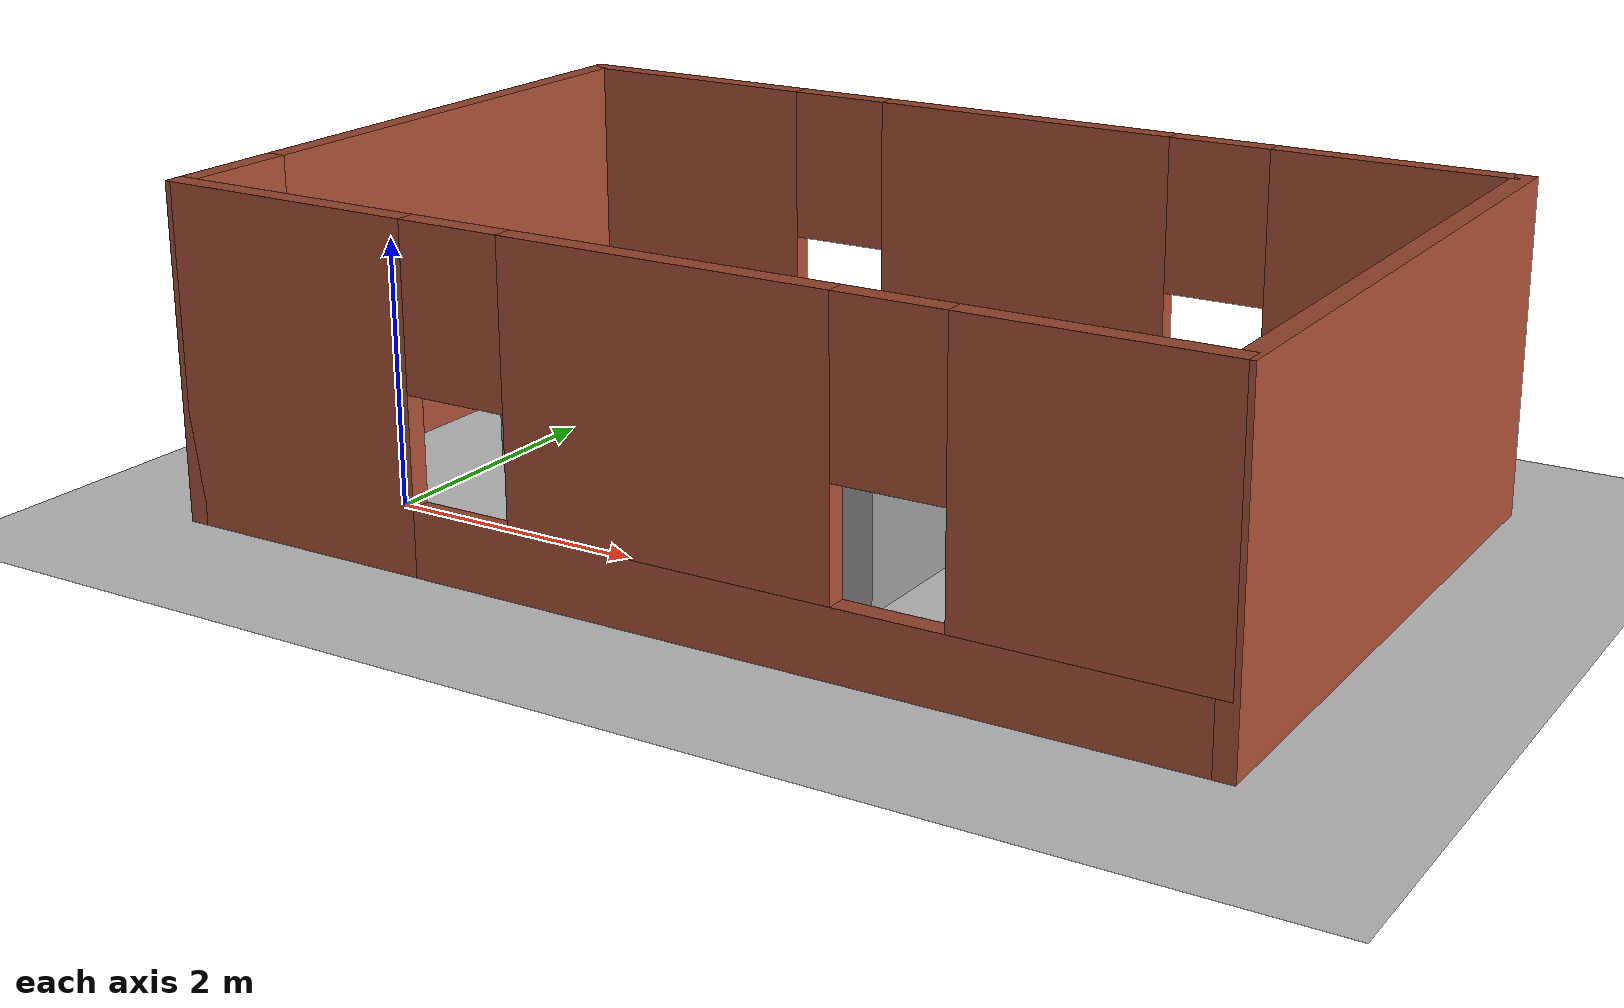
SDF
<sdf version="1.7">
 <world name="default">
  <light name="sun" type="directional">
   <pose>0 0 10 0 -0 0</pose>
   <diffuse>0.8 0.8 0.8 1</diffuse>
   <specular>0.2 0.2 0.2 1</specular>
   <attenuation>
    <range>1000</range>
    <constant>0.9</constant>
    <linear>0.01</linear>
    <quadratic>0.001</quadratic>
   </attenuation>
   <direction>-0.5 0.1 -0.9</direction>
   <spot><inner_angle>0</inner_angle><outer_angle>0</outer_angle><falloff>0</falloff></spot>
  </light>
  <model name="ground_plane">
   <static>1</static>
   <link name="link">
    <collision name="collision">
     <geometry><plane><normal>0 0 1</normal><size>100 100</size></plane></geometry>
     <surface>
      <contact><collide_bitmask>65535</collide_bitmask></contact>
      <friction><ode><mu>100</mu><mu2>50</mu2></ode></friction>
     </surface>
    </collision>
    <visual name="visual">
     <cast_shadows>0</cast_shadows>
     <geometry><plane><normal>0 0 1</normal><size>100 100</size></plane></geometry>
     <material>
      <script><uri>file://media/materials/scripts/gazebo.material</uri><name>Gazebo/Grey</name></script>
     </material>
    </visual>
   </link>
  </model>
  <gravity>0 0 -9.8</gravity>
  <magnetic_field>6e-06 2.3e-05 -4.2e-05</magnetic_field>
  <atmosphere type="adiabatic"/>
  <physics type="ode">
   <max_step_size>0.001</max_step_size>
   <real_time_factor>1</real_time_factor>
   <real_time_update_rate>1000</real_time_update_rate>
  </physics>
  <scene><ambient>0.4 0.4 0.4 1</ambient><background>0.7 0.7 0.7 1</background><shadows>1</shadows></scene>
  <spherical_coordinates>
   <surface_model>EARTH_WGS84</surface_model>
   <latitude_deg>0</latitude_deg>
   <longitude_deg>0</longitude_deg>
   <elevation>0</elevation>
   <heading_deg>0</heading_deg>
  </spherical_coordinates>
  <model name="big_room">
   <pose>2.93547 1.455 0 0 -0 0</pose>
   <link name="Wall_0">
    <pose>-0.020475 -2.425 0 0 -0 0</pose>
    <visual name="Wall_0_Visual_0">
     <pose>-2.95884 0 1.25 0 -0 0</pose>
     <geometry><box><size>2.08232 0.15 2.5</size></box></geometry>
     <material>
      <script><uri>file://media/materials/scripts/gazebo.material</uri><name>Gazebo/Bricks</name></script>
      <ambient>1 1 1 1</ambient>
     </material>
     <meta><layer>0</layer></meta>
    </visual>
    <collision name="Wall_0_Collision_0">
     <geometry><box><size>2.08232 0.15 2.5</size></box></geometry>
     <pose>-2.95884 0 1.25 0 -0 0</pose>
    </collision>
    <visual name="Wall_0_Visual_1">
     <pose>1.04116 0 0.25 0 -0 0</pose>
     <geometry><box><size>5.91768 0.15 0.5</size></box></geometry>
     <material>
      <script><uri>file://media/materials/scripts/gazebo.material</uri><name>Gazebo/Bricks</name></script>
      <ambient>1 1 1 1</ambient>
     </material>
     <meta><layer>0</layer></meta>
    </visual>
    <collision name="Wall_0_Collision_1">
     <geometry><box><size>5.91768 0.15 0.5</size></box></geometry>
     <pose>1.04116 0 0.25 0 -0 0</pose>
    </collision>
    <visual name="Wall_0_Visual_2">
     <pose>0.122225 0 1.5 0 -0 0</pose>
     <geometry><box><size>2.4798 0.15 2</size></box></geometry>
     <material>
      <script><uri>file://media/materials/scripts/gazebo.material</uri><name>Gazebo/Bricks</name></script>
      <ambient>1 1 1 1</ambient>
     </material>
     <meta><layer>0</layer></meta>
    </visual>
    <collision name="Wall_0_Collision_2">
     <geometry><box><size>2.4798 0.15 2</size></box></geometry>
     <pose>0.122225 0 1.5 0 -0 0</pose>
    </collision>
    <visual name="Wall_0_Visual_3">
     <pose>3.08106 0 1.5 0 -0 0</pose>
     <geometry><box><size>1.83787 0.15 2</size></box></geometry>
     <material>
      <script><uri>file://media/materials/scripts/gazebo.material</uri><name>Gazebo/Bricks</name></script>
      <ambient>1 1 1 1</ambient>
     </material>
     <meta><layer>0</layer></meta>
    </visual>
    <collision name="Wall_0_Collision_3">
     <geometry><box><size>1.83787 0.15 2</size></box></geometry>
     <pose>3.08106 0 1.5 0 -0 0</pose>
    </collision>
    <visual name="Wall_0_Visual_4">
     <pose>-1.51768 0 1.9 0 -0 0</pose>
     <geometry><box><size>0.8 0.15 1.2</size></box></geometry>
     <material>
      <script><uri>file://media/materials/scripts/gazebo.material</uri><name>Gazebo/Bricks</name></script>
      <ambient>1 1 1 1</ambient>
     </material>
     <meta><layer>0</layer></meta>
    </visual>
    <collision name="Wall_0_Collision_4">
     <geometry><box><size>0.8 0.15 1.2</size></box></geometry>
     <pose>-1.51768 0 1.9 0 -0 0</pose>
    </collision>
    <visual name="Wall_0_Visual_5">
     <pose>1.76212 0 1.9 0 -0 0</pose>
     <geometry><box><size>0.8 0.15 1.2</size></box></geometry>
     <material>
      <script><uri>file://media/materials/scripts/gazebo.material</uri><name>Gazebo/Bricks</name></script>
      <ambient>1 1 1 1</ambient>
     </material>
     <meta><layer>0</layer></meta>
    </visual>
    <collision name="Wall_0_Collision_5">
     <geometry><box><size>0.8 0.15 1.2</size></box></geometry>
     <pose>1.76212 0 1.9 0 -0 0</pose>
    </collision>
   </link>
   <link name="Wall_2">
    <pose>-3.94548 -0 0 0 -0 1.5708</pose>
    <visual name="Wall_2_Visual_0">
     <pose>-2.4461 0 1.25 0 -0 0</pose>
     <geometry><box><size>0.1078 0.15 2.5</size></box></geometry>
     <material>
      <script><uri>file://media/materials/scripts/gazebo.material</uri><name>Gazebo/Bricks</name></script>
      <ambient>1 1 1 1</ambient>
     </material>
     <meta><layer>0</layer></meta>
    </visual>
    <collision name="Wall_2_Collision_0">
     <geometry><box><size>0.1078 0.15 2.5</size></box></geometry>
     <pose>-2.4461 0 1.25 0 -0 0</pose>
    </collision>
    <visual name="Wall_2_Visual_1">
     <pose>0.5039 0 1.25 0 -0 0</pose>
     <geometry><box><size>3.9922 0.15 2.5</size></box></geometry>
     <material>
      <script><uri>file://media/materials/scripts/gazebo.material</uri><name>Gazebo/Bricks</name></script>
      <ambient>1 1 1 1</ambient>
     </material>
     <meta><layer>0</layer></meta>
    </visual>
    <collision name="Wall_2_Collision_1">
     <geometry><box><size>3.9922 0.15 2.5</size></box></geometry>
     <pose>0.5039 0 1.25 0 -0 0</pose>
    </collision>
    <visual name="Wall_2_Visual_2">
     <pose>-1.9422 0 2.25 0 -0 0</pose>
     <geometry><box><size>0.9 0.15 0.5</size></box></geometry>
     <material>
      <script><uri>file://media/materials/scripts/gazebo.material</uri><name>Gazebo/Bricks</name></script>
      <ambient>1 1 1 1</ambient>
     </material>
     <meta><layer>0</layer></meta>
    </visual>
    <collision name="Wall_2_Collision_2">
     <geometry><box><size>0.9 0.15 0.5</size></box></geometry>
     <pose>-1.9422 0 2.25 0 -0 0</pose>
    </collision>
   </link>
   <link name="Wall_4">
    <pose>0 2.425 0 0 -0 0</pose>
    <visual name="Wall_4_Visual_0">
     <pose>-2.99254 0 1.25 0 -0 0</pose>
     <geometry><box><size>2.05588 0.15 2.5</size></box></geometry>
     <material>
      <script><uri>file://media/materials/scripts/gazebo.material</uri><name>Gazebo/Bricks</name></script>
      <ambient>1 1 1 1</ambient>
     </material>
     <meta><layer>0</layer></meta>
    </visual>
    <collision name="Wall_4_Collision_0">
     <geometry><box><size>2.05588 0.15 2.5</size></box></geometry>
     <pose>-2.99254 0 1.25 0 -0 0</pose>
    </collision>
    <visual name="Wall_4_Visual_1">
     <pose>1.02794 0 0.25 0 -0 0</pose>
     <geometry><box><size>5.98508 0.15 0.5</size></box></geometry>
     <material>
      <script><uri>file://media/materials/scripts/gazebo.material</uri><name>Gazebo/Bricks</name></script>
      <ambient>1 1 1 1</ambient>
     </material>
     <meta><layer>0</layer></meta>
    </visual>
    <collision name="Wall_4_Collision_1">
     <geometry><box><size>5.98508 0.15 0.5</size></box></geometry>
     <pose>1.02794 0 0.25 0 -0 0</pose>
    </collision>
    <visual name="Wall_4_Visual_2">
     <pose>0.068687 0 1.5 0 -0 0</pose>
     <geometry><box><size>2.46658 0.15 2</size></box></geometry>
     <material>
      <script><uri>file://media/materials/scripts/gazebo.material</uri><name>Gazebo/Bricks</name></script>
      <ambient>1 1 1 1</ambient>
     </material>
     <meta><layer>0</layer></meta>
    </visual>
    <collision name="Wall_4_Collision_2">
     <geometry><box><size>2.46658 0.15 2</size></box></geometry>
     <pose>0.068687 0 1.5 0 -0 0</pose>
    </collision>
    <visual name="Wall_4_Visual_3">
     <pose>3.06123 0 1.5 0 -0 0</pose>
     <geometry><box><size>1.9185 0.15 2</size></box></geometry>
     <material>
      <script><uri>file://media/materials/scripts/gazebo.material</uri><name>Gazebo/Bricks</name></script>
      <ambient>1 1 1 1</ambient>
     </material>
     <meta><layer>0</layer></meta>
    </visual>
    <collision name="Wall_4_Collision_3">
     <geometry><box><size>1.9185 0.15 2</size></box></geometry>
     <pose>3.06123 0 1.5 0 -0 0</pose>
    </collision>
    <visual name="Wall_4_Visual_4">
     <pose>-1.5646 0 1.9 0 -0 0</pose>
     <geometry><box><size>0.8 0.15 1.2</size></box></geometry>
     <material>
      <script><uri>file://media/materials/scripts/gazebo.material</uri><name>Gazebo/Bricks</name></script>
      <ambient>1 1 1 1</ambient>
     </material>
     <meta><layer>0</layer></meta>
    </visual>
    <collision name="Wall_4_Collision_4">
     <geometry><box><size>0.8 0.15 1.2</size></box></geometry>
     <pose>-1.5646 0 1.9 0 -0 0</pose>
    </collision>
    <visual name="Wall_4_Visual_5">
     <pose>1.70198 0 1.9 0 -0 0</pose>
     <geometry><box><size>0.8 0.15 1.2</size></box></geometry>
     <material>
      <script><uri>file://media/materials/scripts/gazebo.material</uri><name>Gazebo/Bricks</name></script>
      <ambient>1 1 1 1</ambient>
     </material>
     <meta><layer>0</layer></meta>
    </visual>
    <collision name="Wall_4_Collision_5">
     <geometry><box><size>0.8 0.15 1.2</size></box></geometry>
     <pose>1.70198 0 1.9 0 -0 0</pose>
    </collision>
   </link>
   <link name="Wall_5">
    <collision name="Wall_5_Collision">
     <geometry><box><size>5 0.15 2.5</size></box></geometry>
     <pose>0 0 1.25 0 -0 0</pose>
    </collision>
    <visual name="Wall_5_Visual">
     <pose>0 0 1.25 0 -0 0</pose>
     <geometry><box><size>5 0.15 2.5</size></box></geometry>
     <material>
      <script><uri>file://media/materials/scripts/gazebo.material</uri><name>Gazebo/Bricks</name></script>
      <ambient>1 1 1 1</ambient>
     </material>
     <meta><layer>0</layer></meta>
    </visual>
    <pose>3.94548 -0 0 0 -0 -1.5708</pose>
   </link>
   <static>1</static>
  </model>
  <model name="unit_box">
   <pose>0.558166 1.55317 0.499995 0 1e-05 0</pose>
   <link name="link">
    <inertial>
     <mass>1</mass>
     <inertia>
      <ixx>0.166667</ixx>
      <ixy>0</ixy>
      <ixz>0</ixz>
      <iyy>0.166667</iyy>
      <iyz>0</iyz>
      <izz>0.166667</izz>
     </inertia>
    </inertial>
    <collision name="collision"><geometry><box><size>1 1 1</size></box></geometry></collision>
    <visual name="visual">
     <geometry><box><size>1 1 1</size></box></geometry>
     <material>
      <script><name>Gazebo/Grey</name><uri>file://media/materials/scripts/gazebo.material</uri></script>
     </material>
    </visual>
   </link>
  </model>
  <model name="unit_box_0">
   <pose>3.46062 0.487776 0.499995 -1e-05 -0 0</pose>
   <link name="link">
    <inertial>
     <mass>1</mass>
     <inertia>
      <ixx>0.166667</ixx>
      <ixy>0</ixy>
      <ixz>0</ixz>
      <iyy>0.166667</iyy>
      <iyz>0</iyz>
      <izz>0.166667</izz>
     </inertia>
    </inertial>
    <collision name="collision"><geometry><box><size>1 1 1</size></box></geometry></collision>
    <visual name="visual">
     <geometry><box><size>1 1 1</size></box></geometry>
     <material>
      <script><name>Gazebo/Grey</name><uri>file://media/materials/scripts/gazebo.material</uri></script>
     </material>
    </visual>
   </link>
  </model>
  <model name="unit_box_1">
   <pose>5.48806 2.5291 0.5 0 -0 0</pose>
   <link name="link">
    <inertial>
     <mass>1</mass>
     <inertia>
      <ixx>0.166667</ixx>
      <ixy>0</ixy>
      <ixz>0</ixz>
      <iyy>0.166667</iyy>
      <iyz>0</iyz>
      <izz>0.166667</izz>
     </inertia>
    </inertial>
    <collision name="collision"><geometry><box><size>1 1 1</size></box></geometry></collision>
    <visual name="visual">
     <geometry><box><size>1 1 1</size></box></geometry>
     <material>
      <script><name>Gazebo/Grey</name><uri>file://media/materials/scripts/gazebo.material</uri></script>
     </material>
    </visual>
   </link>
  </model>
 </world>
</sdf>
